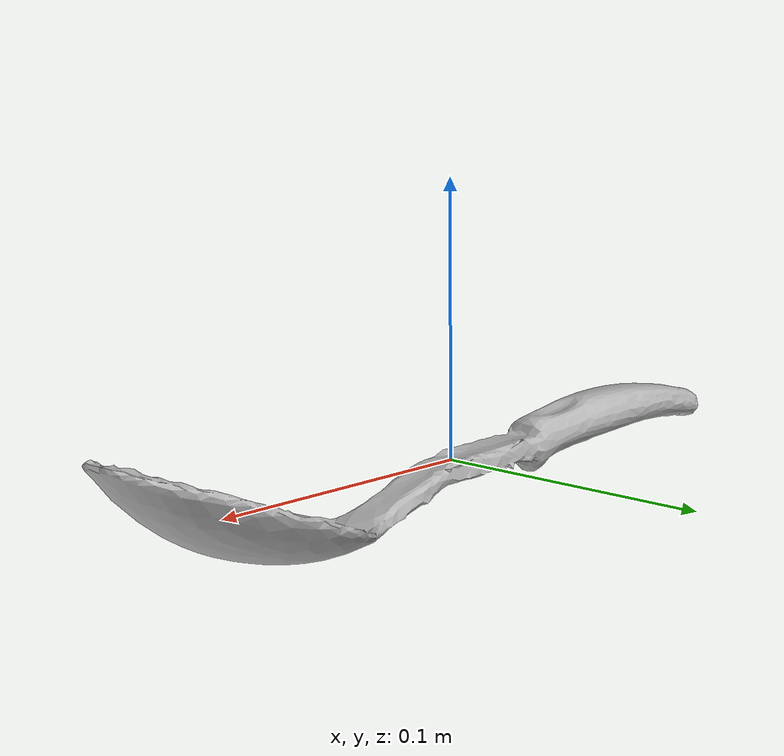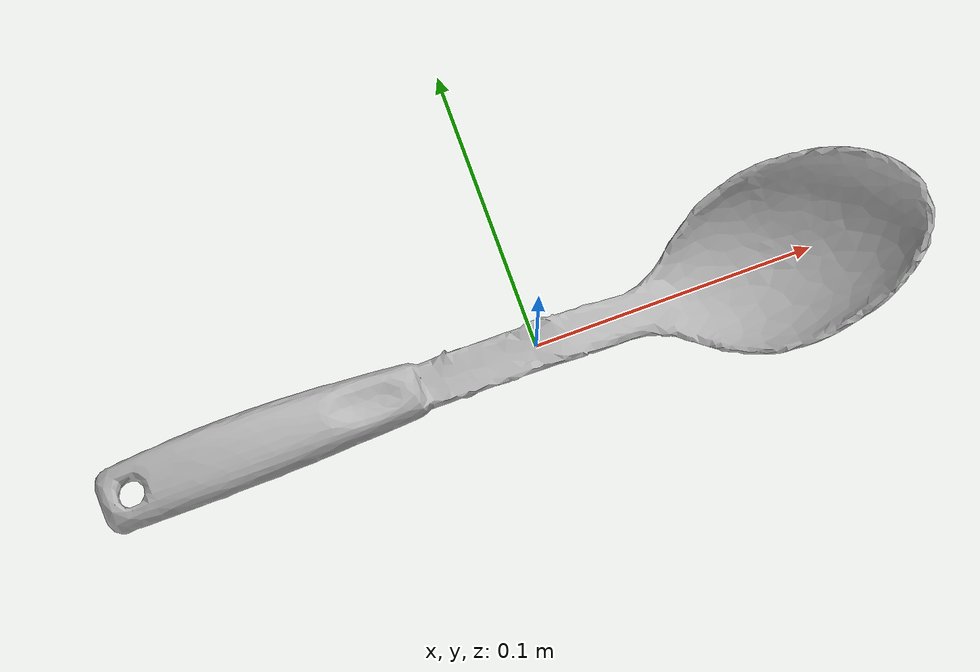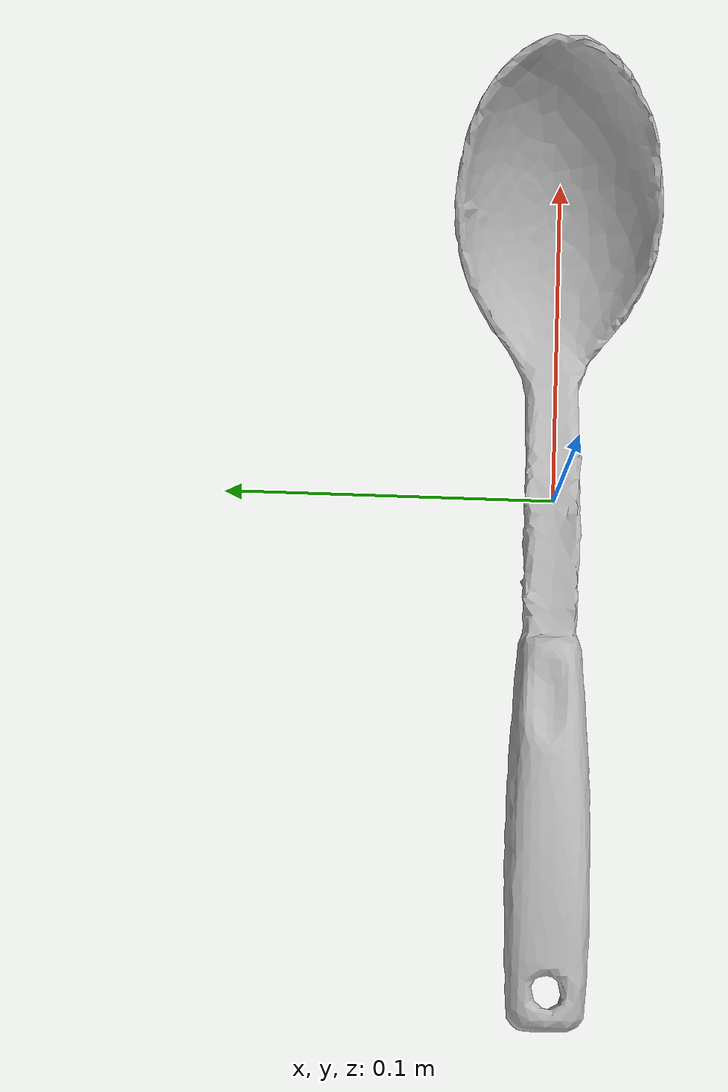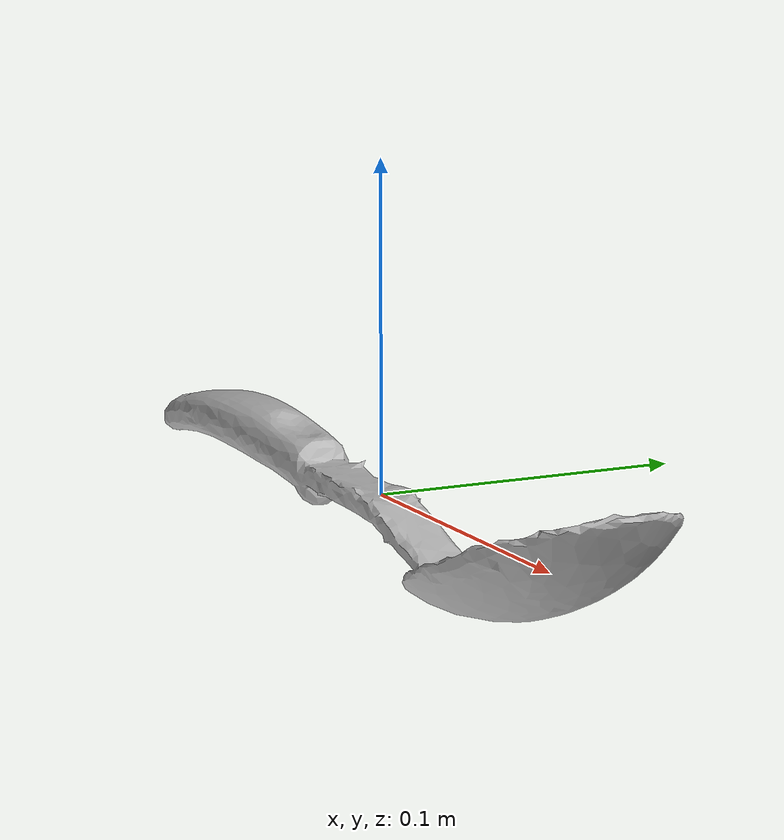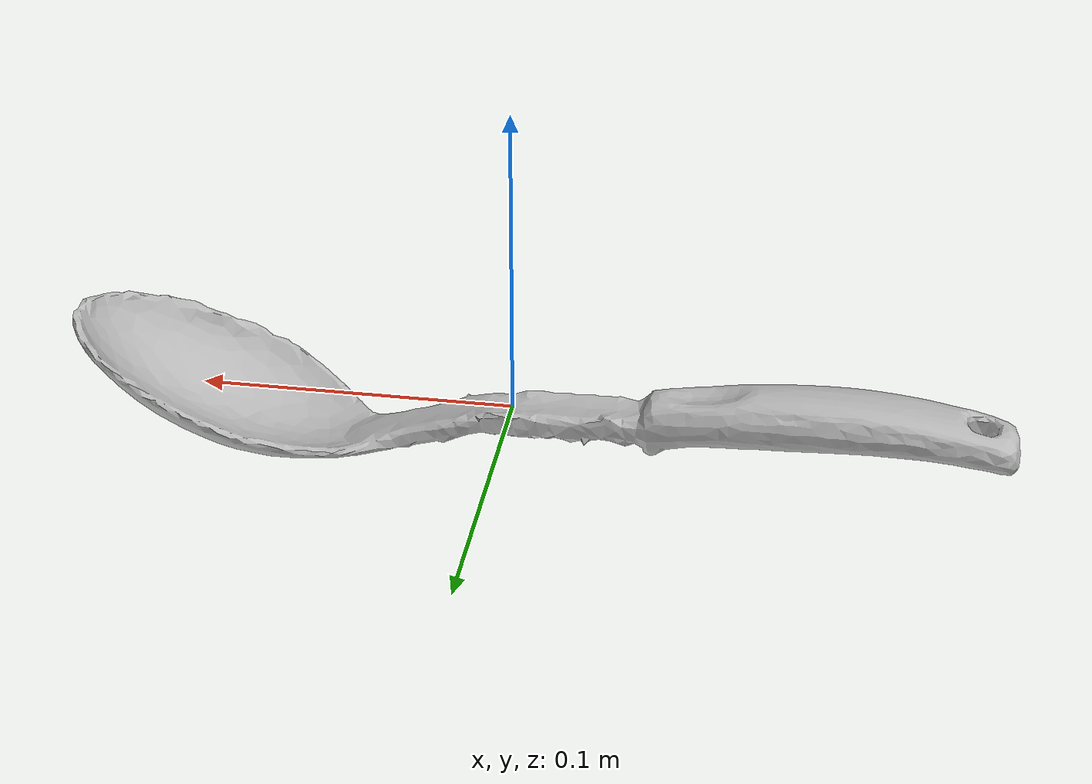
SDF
<?xml version='1.0'?>
<sdf version='1.6'>
	<model name='b_serving_spoon'>
		<static>false</static>
		<pose>0 0 0 0 0 0</pose>

		<link name='link'>
			<inertial>
			<mass>0.15</mass>
			<pose>0.0019638 -6.1791e-05 0.00018857 0 0 0</pose>
				<inertia>
					<ixx>0.0000075</ixx>
					<iyy>0.00112875</iyy>
					<izz>0.00112875</izz>
				</inertia>
			</inertial>
			<sensor name="tool_contact_sensor" type="contact">
				<always_on>true</always_on>
				<update_rate>30.0</update_rate>
				<contact>
					<collision>collision</collision>
				</contact>
				<plugin name="tool_bumper" filename="libgazebo_ros_bumper.so">
					<bumperTopicName>tool_contact_sensor_state</bumperTopicName>
					<frameName>world</frameName>
				</plugin>
			</sensor>
			<collision name='collision'>
				<geometry>
					<mesh>
						<uri>model://b_serving_spoon/b_serving_spoon.dae</uri>
					</mesh>
				</geometry>
				<surface>
					<friction>
						<ode>
							<mu>0.2</mu>
							<mu2>0.2</mu2>
						</ode>
					</friction>
				</surface>
			</collision>
			<visual name='visual'>
				<geometry>
					<mesh>
						<uri>model://b_serving_spoon/b_serving_spoon.dae</uri>
					</mesh>
				</geometry>
			</visual>
		</link>
	</model>
</sdf>
